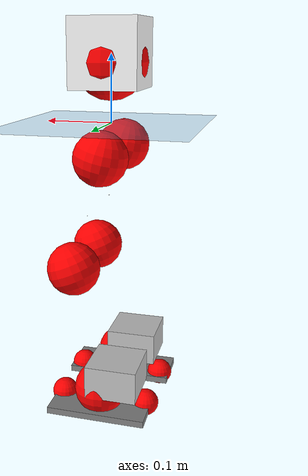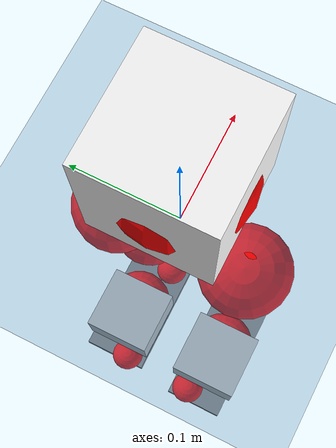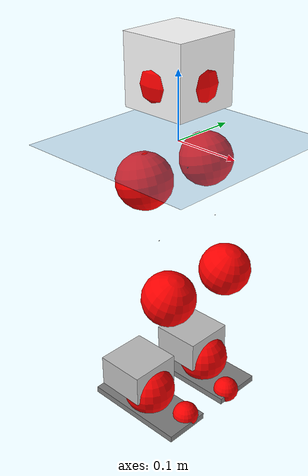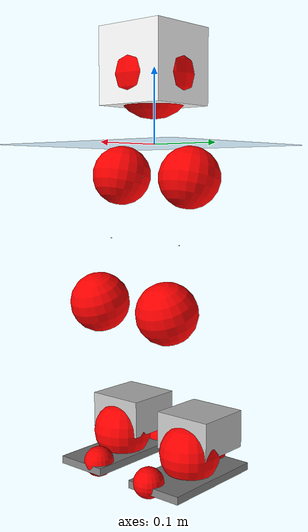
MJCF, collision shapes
<mujoco model="pi_12dof_release_v1">
  <compiler angle="radian" assetdir="assets" balanceinertia="true" inertiafromgeom="false"/>

  <option timestep="0.005" density="1.2" viscosity="2e-05"/>

  <size nkey="1"/>

  <visual>
    <quality shadowsize="8192"/>
    <map shadowclip="0.5"/>
  </visual>

  <default>
    <default class="/">
      <joint armature="0.01" damping="0.01" frictionloss="0.01"/>
      <geom contype="0" conaffinity="0" group="1" solref="-1000 -80"/>
      <site size="0.01 0.005 0.005" group="5"/>
      <general forcelimited="true" biastype="affine" gainprm="20" biasprm="0 -20 -0.5"/>
      <default class="foot">
        <geom size="0.0845 0.036 0.005" type="box" condim="6" group="4" priority="1" friction="0.9 0.2 0.2" solimp="0.015 1 0.005"/>
      </default>
      <default class="reward_collision_sphere">
        <geom group="5" rgba="1 0 0 1"/>
      </default>
    </default>
  </default>

  <asset>
    <texture type="skybox" colorspace="auto" name="//unnamed_texture_0" builtin="gradient" rgb1="0.95 0.95 0.95" rgb2="0.95 0.95 0.95" width="100" height="600"/>
    <texture type="2d" colorspace="auto" name="texplane" builtin="checker" rgb1="0.345 0.575 0.748" rgb2="0.345 0.575 0.748" markrgb="1 1 1" width="512" height="512"/>
    <material name="MatPlane" class="/" texture="texplane" texuniform="true" texrepeat="2 2" specular="0.9"/>
    <mesh name="baselink_1" class="/" file="baselink_1.STL"/>
    <mesh name="r_hip_pitch_link" class="/" file="r_hip_pitch_link.STL"/>
    <mesh name="r_hip_roll_link" class="/" file="r_hip_roll_link.STL"/>
    <mesh name="r_thigh_link" class="/" file="r_thigh_link.STL"/>
    <mesh name="r_calf_link" class="/" file="r_calf_link.STL"/>
    <mesh name="r_ankle_pitch_link" class="/" file="r_ankle_pitch_link.STL"/>
    <mesh name="r_ankle_roll_link" class="/" file="r_ankle_roll_link.STL"/>
    <mesh name="l_hip_pitch_link" class="/" file="l_hip_pitch_link.STL"/>
    <mesh name="l_hip_roll_link" class="/" file="l_hip_roll_link.STL"/>
    <mesh name="l_thigh_link" class="/" file="l_thigh_link.STL"/>
    <mesh name="l_calf_link" class="/" file="l_calf_link.STL"/>
    <mesh name="l_ankle_pitch_link" class="/" file="l_ankle_pitch_link.STL"/>
    <mesh name="l_ankle_roll_link" class="/" file="l_ankle_roll_link.STL"/>
  </asset>

  <worldbody>
    <geom name="floor" class="/" size="100 100 0.125" type="plane" group="0" material="MatPlane"/>
    <light name="toplight_shadow" class="/" pos="0 0 5" dir="0.0990148 0.0990148 -0.990148" type="directional" ambient="0.04 0.04 0.04" diffuse="0.55 0.55 0.55" specular="0.12 0.12 0.12"/>
    <light name="toplight_fill" class="/" pos="0 0 5" dir="0.0990148 0.0990148 -0.990148" type="directional" castshadow="false" ambient="0.04 0.04 0.04" diffuse="0.3 0.3 0.3" specular="0.08 0.08 0.08"/>
    <body name="trunk" pos="0.000700605 -0.000303193 8.29173e-05" quat="1 -0.000330331 0.000327281 1.46706e-05">
      <inertial pos="6.68182e-05 -0.00298608 0.0502869" quat="0.697382 0.012811 0.0075217 0.716545" mass="2.29968" diaginertia="0.00907987 0.00270499 0.0129681"/>
      <joint name="//unnamed_joint_0" type="free"/>
      <geom name="//unnamed_geom_1" class="/" type="mesh" density="0" rgba="1 1 1 1" mesh="baselink_1"/>
      <geom name="//unnamed_geom_2" class="/" size="0.0505499 0.0505499 0.0505499" pos="0 0 0.100732" type="box" rgba="1 1 1 1"/>
      <geom name="//unnamed_geom_3" class="reward_collision_sphere" size="0.0556049" pos="0 0 0.0881405"/>
      <site name="imu" class="/" pos="0.0134678 0.000477241 -0.0135043" size="0.01011"/>
      <camera name="track" class="/" pos="0 -1.575 0" quat="0.707107 0.707107 0 0" mode="trackcom"/>
      <camera name="ego_camera" class="/" pos="0.0739755 0 0.226647" quat="-0.5 -0.5 0.5 0.5"/>
      <body name="r_hip_pitch_link" pos="-0.0023515 -0.0205511 -0.0424551" quat="0.992186 -9.28393e-06 -0.124765 -4.39553e-06">
        <inertial pos="0.00115212 -0.0470669 -0.000372348" quat="-0.0187341 0.706266 -0.0277105 0.707156" mass="0.378331" diaginertia="9.90621e-05 2.78806e-05 0.00025518"/>
        <joint name="r_hip_pitch_joint" class="/" pos="0 0 0" axis="-0.000242015 -1 -0.00037972" stiffness="0.0111054" range="-1.76481 1.19829" armature="0.00873208" damping="0.013211" frictionloss="0.00974797"/>
        <geom name="//unnamed_geom_4" class="/" type="mesh" density="0" rgba="0.75294 0.75294 0.75294 1" mesh="r_hip_pitch_link"/>
        <geom name="//unnamed_geom_5" class="/" size="0.000505499 0.000505499 0.000505499" type="box" rgba="0.75294 0.75294 0.75294 1"/>
        <body name="r_hip_roll_link" pos="-0.00171771 -0.0417552 0.00215528" quat="0.999999 -0.000950603 -0.000807254 0.000674095">
          <inertial pos="-0.00253209 -0.000130869 -0.0759647" quat="0.714636 -0.0735704 -0.079344 0.691077" mass="0.391401" diaginertia="0.000313178 8.21455e-05 0.000407129"/>
          <joint name="r_hip_roll_joint" class="/" pos="0 0 0" axis="-0.99992 -0.00760397 -0.010076" range="-0.139386 0.502457" armature="0.00898964" damping="0" frictionloss="0.0114359"/>
          <geom name="//unnamed_geom_6" class="/" type="mesh" density="0" rgba="0.75294 0.75294 0.75294 1" mesh="r_hip_roll_link"/>
          <geom name="//unnamed_geom_7" class="/" size="0.000505499 0.000505499 0.000505499" type="box" rgba="0.75294 0.75294 0.75294 1"/>
          <geom name="//unnamed_geom_8" class="reward_collision_sphere" size="0.0404399"/>
          <body name="r_thigh_link" pos="0.00245185 0.00294419 -0.0880407" quat="1 0.000363814 1.14257e-06 8.47697e-05">
            <inertial pos="0.000769429 -0.00048256 -0.0611372" quat="0.736197 0.676764 -0.000611005 -0.00203876" mass="0.117984" diaginertia="0.000114131 2.88361e-05 0.000183474"/>
            <joint name="r_thigh_joint" class="/" pos="0 0 0" axis="0.00217645 -0.00431539 -0.999988" stiffness="0.00170754" range="-0.351698 0.620288" armature="0.0115869" damping="0" frictionloss="0.0107946"/>
            <geom name="//unnamed_geom_9" class="/" type="mesh" density="0" rgba="0.75294 0.75294 0.75294 1" mesh="r_thigh_link"/>
            <geom name="//unnamed_geom_10" class="/" size="0.000505499 0.000505499 0.000505499" type="box" rgba="0.75294 0.75294 0.75294 1"/>
            <body name="r_calf_link" pos="-0.00199135 -0.00226742 -0.088343" quat="0.947666 3.65561e-05 0.319263 -7.62733e-06">
              <inertial pos="-0.00268727 -0.00317327 -0.0902351" quat="0.999883 -0.0102753 0.0101486 0.00508695" mass="0.832613" diaginertia="0.00313295 0.0010812 0.00052722"/>
              <joint name="r_calf_joint" class="/" pos="0 0 0" axis="-0.00839712 -0.999939 -0.00713245" range="-1.65157 0.660733" armature="0.00943973" damping="0.0120527" frictionloss="0.00994604"/>
              <geom name="//unnamed_geom_11" class="/" type="mesh" density="0" rgba="0.75294 0.75294 0.75294 1" mesh="r_calf_link"/>
              <geom name="//unnamed_geom_12" class="/" size="0.000505499 0.000505499 0.000505499" type="box" rgba="0.75294 0.75294 0.75294 1"/>
              <geom name="//unnamed_geom_13" class="reward_collision_sphere" size="0.0404399"/>
              <body name="r_ankle_pitch_link" pos="0.00205551 -0.000484221 -0.178582" quat="0.98034 0.000368978 -0.197315 -4.51228e-05">
                <inertial pos="0.00751632 0.00336026 -0.0020408" quat="-0.0049533 0.709983 0.00255681 0.704196" mass="0.190407" diaginertia="0.000283252 6.57076e-05 0.000397108"/>
                <joint name="r_ankle_pitch_joint" class="/" pos="0 0 0" axis="0.0100489 -0.999948 0.00184084" range="-1.24208 0.546775" armature="0.0111474" damping="0" frictionloss="0.0104157"/>
                <geom name="//unnamed_geom_14" class="/" type="mesh" density="0" rgba="0.75294 0.75294 0.75294 1" mesh="r_ankle_pitch_link"/>
                <geom name="//unnamed_geom_15" class="/" size="0.0394289 0.0404399 0.0252749" type="box" rgba="0.75294 0.75294 0.75294 1"/>
                <body name="r_ankle_roll_link" pos="0.0729204 0.000797359 0.000779908" quat="1 -0.000794282 0.000396304 0.000131753">
                  <inertial pos="-0.0262567 0.000169192 -0.0183011" quat="0.567741 0.42482 0.438291 0.552358" mass="0.567046" diaginertia="0.00110078 0.000318821 0.000924613"/>
                  <joint name="r_ankle_roll_joint" class="/" pos="0 0 0" axis="-0.999954 0.00267821 -0.00916106" stiffness="0.0029523" range="-0.106428 0.163789" armature="0.0114431" damping="0.0129784" frictionloss="0.00977872"/>
                  <geom name="//unnamed_geom_16" class="/" type="mesh" density="0" rgba="0.75294 0.75294 0.75294 1" mesh="r_ankle_roll_link"/>
                  <geom name="//unnamed_geom_17" class="/" type="mesh" rgba="0.75294 0.75294 0.75294 1" mesh="r_ankle_roll_link"/>
                  <geom name="right_foot" class="foot" size="0.0839757 0.0365129 0.00509488" pos="-0.0503034 0 -0.0554026"/>
                  <geom name="//unnamed_geom_19" class="reward_collision_sphere" size="0.0404399" pos="-0.049317 0 -0.025183"/>
                  <geom name="//unnamed_geom_20" class="reward_collision_sphere" size="0.0202199" pos="0.0147951 0.01575 -0.050366"/>
                  <geom name="//unnamed_geom_21" class="reward_collision_sphere" size="0.0202199" pos="-0.118361 0.01575 -0.050366"/>
                  <site name="right_foot" class="foot" pos="-0.0503034 0 -0.0554026" size="0.01011"/>
                </body>
              </body>
            </body>
          </body>
        </body>
      </body>
      <body name="l_hip_pitch_link" pos="0.00217129 0.0161463 -0.04425" quat="0.992198 -3.51158e-05 -0.124674 -1.23597e-05">
        <inertial pos="0.00128301 0.0444782 -0.00279932" quat="-0.0352806 0.70844 0.0420095 0.703636" mass="0.416633" diaginertia="0.000127051 3.32687e-05 0.00032272"/>
        <joint name="l_hip_pitch_joint" class="/" pos="0 0 0" axis="-0.00207023 0.999996 0.00190734" range="-1.27147 1.75448" armature="0.0103126" damping="0.0212197" frictionloss="0.00894365"/>
        <geom name="//unnamed_geom_22" class="/" type="mesh" density="0" rgba="0.75294 0.75294 0.75294 1" mesh="l_hip_pitch_link"/>
        <geom name="//unnamed_geom_23" class="/" size="0.000505499 0.000505499 0.000505499" type="box" rgba="0.75294 0.75294 0.75294 1"/>
        <body name="l_hip_roll_link" pos="-0.00279035 0.0433578 0.00134621" quat="1 -4.9269e-05 7.0187e-05 -1.74094e-07">
          <inertial pos="-0.00416728 -2.21274e-05 -0.0791329" quat="0.698447 -0.0756013 -0.0771466 0.707464" mass="0.386282" diaginertia="0.0002925 8.3985e-05 0.000395686"/>
          <joint name="l_hip_roll_joint" class="/" pos="0 0 0" axis="-1 -0.00032092 6.37496e-05" range="-0.499483 0.137369" armature="0.0104704" damping="0.0189714" frictionloss="0.00921443"/>
          <geom name="//unnamed_geom_24" class="/" type="mesh" density="0" rgba="0.75294 0.75294 0.75294 1" mesh="l_hip_roll_link"/>
          <geom name="//unnamed_geom_25" class="/" size="0.000505499 0.000505499 0.000505499" type="box" rgba="0.75294 0.75294 0.75294 1"/>
          <geom name="//unnamed_geom_26" class="reward_collision_sphere" size="0.0404399"/>
          <body name="l_thigh_link" pos="-0.00148928 -8.54455e-06 -0.0879412" quat="1 -0.000134866 -1.01366e-05 -0.00010281">
            <inertial pos="0.00163188 0.00135681 -0.0599298" quat="0.679451 0.733666 0.00484968 0.00754965" mass="0.119447" diaginertia="0.000116339 3.04767e-05 0.000187619"/>
            <joint name="l_thigh_joint" class="/" pos="0 0 0" axis="-0.000156529 0.000200545 -1" range="-0.65311 0.256626" armature="0.0100749" damping="0.00888186" frictionloss="0.0103403"/>
            <geom name="//unnamed_geom_27" class="/" type="mesh" density="0" rgba="0.75294 0.75294 0.75294 1" mesh="l_thigh_link"/>
            <geom name="//unnamed_geom_28" class="/" size="0.000505499 0.000505499 0.000505499" type="box" rgba="0.75294 0.75294 0.75294 1"/>
            <body name="l_calf_link" pos="0.001396 -0.000784853 -0.0877265" quat="0.947788 -0.000325582 0.3189 -0.000304612">
              <inertial pos="-0.00153903 0.00353867 -0.0904242" quat="0.999882 0.0123203 -0.00372711 0.00843416" mass="0.844487" diaginertia="0.00318236 0.00103463 0.00053626"/>
              <joint name="l_calf_joint" class="/" pos="0 0 0" axis="0.00181584 0.999906 0.0135911" range="-0.650279 1.65643" armature="0.0102332" damping="0" frictionloss="0.0102483"/>
              <geom name="//unnamed_geom_29" class="/" type="mesh" density="0" rgba="0.75294 0.75294 0.75294 1" mesh="l_calf_link"/>
              <geom name="//unnamed_geom_30" class="/" size="0.000505499 0.000505499 0.000505499" type="box" rgba="0.75294 0.75294 0.75294 1"/>
              <geom name="//unnamed_geom_31" class="reward_collision_sphere" size="0.0404399"/>
              <body name="l_ankle_pitch_link" pos="0.00249756 0.00121111 -0.179526" quat="0.979981 -0.0002147 -0.199087 0.00129115">
                <inertial pos="0.00538374 0.000960029 -0.00105721" quat="-0.00299056 0.707691 0.00291011 0.706509" mass="0.17119" diaginertia="0.000270392 6.57257e-05 0.000373464"/>
                <joint name="l_ankle_pitch_joint" class="/" pos="0 0 0" axis="0.00212205 0.999998 0.000293021" range="-0.539095 1.25946" armature="0.00907636" damping="0.00679188" frictionloss="0.0104634"/>
                <geom name="//unnamed_geom_32" class="/" type="mesh" density="0" rgba="0.75294 0.75294 0.75294 1" mesh="l_ankle_pitch_link"/>
                <geom name="//unnamed_geom_33" class="/" size="0.0394289 0.0404399 0.0252749" type="box" rgba="0.75294 0.75294 0.75294 1"/>
                <body name="l_ankle_roll_link" pos="0.0739178 0.00267375 -0.00043516" quat="0.999999 -0.000628721 -0.000616687 0.000901567">
                  <inertial pos="-0.0214142 -0.00196051 -0.0189957" quat="0.55178 0.429241 0.444529 0.560076" mass="0.544464" diaginertia="0.00103271 0.000312643 0.000879427"/>
                  <joint name="l_ankle_roll_joint" class="/" pos="0 0 0" axis="-0.999999 0.000364509 0.00157528" range="-0.0969879 0.105515" armature="0.0116178" damping="0.0223754" frictionloss="0.010596"/>
                  <geom name="//unnamed_geom_34" class="/" type="mesh" density="0" rgba="0.75294 0.75294 0.75294 1" mesh="l_ankle_roll_link"/>
                  <geom name="//unnamed_geom_35" class="/" type="mesh" rgba="0.75294 0.75294 0.75294 1" mesh="l_ankle_roll_link"/>
                  <geom name="left_foot" class="foot" size="0.0762825 0.0405373 0.00508051" pos="-0.0503034 0 -0.0554026"/>
                  <geom name="//unnamed_geom_37" class="reward_collision_sphere" size="0.0404399" pos="-0.049317 0 -0.025183"/>
                  <geom name="//unnamed_geom_38" class="reward_collision_sphere" size="0.0202199" pos="0.0147951 -0.01575 -0.050366"/>
                  <geom name="//unnamed_geom_39" class="reward_collision_sphere" size="0.0202199" pos="-0.118361 -0.01575 -0.050366"/>
                  <site name="left_foot" class="foot" pos="-0.0503034 0 -0.0554026" size="0.01011"/>
                </body>
              </body>
            </body>
          </body>
        </body>
      </body>
    </body>
  </worldbody>

  <contact>
    <pair class="/" geom1="floor" geom2="right_foot" name="//unnamed_contact_1"/>
    <pair class="/" geom1="floor" geom2="left_foot" name="//unnamed_contact_0"/>
  </contact>

  <actuator>
    <general name="r_hip_pitch_joint" class="/" joint="r_hip_pitch_joint" forcerange="-23.4345 23.4345" gainprm="19.1946" biasprm="0 -19.1946 -0.501726"/>
    <general name="r_hip_roll_joint" class="/" joint="r_hip_roll_joint" forcerange="-21.0221 21.0221" gainprm="19.1946" biasprm="0 -19.1946 -0.501726"/>
    <general name="r_thigh_joint" class="/" joint="r_thigh_joint" forcerange="-21.0078 21.0078" gainprm="19.1946" biasprm="0 -19.1946 -0.501726"/>
    <general name="r_calf_joint" class="/" joint="r_calf_joint" forcerange="-23.3867 23.3867" gainprm="19.1946" biasprm="0 -19.1946 -0.501726"/>
    <general name="r_ankle_pitch_joint" class="/" joint="r_ankle_pitch_joint" forcerange="-20.4035 20.4035" gainprm="19.1946" biasprm="0 -19.1946 -0.501726"/>
    <general name="r_ankle_roll_joint" class="/" joint="r_ankle_roll_joint" forcerange="-21.8576 21.8576" gainprm="19.1946" biasprm="0 -19.1946 -0.501726"/>
    <general name="l_hip_pitch_joint" class="/" joint="l_hip_pitch_joint" forcerange="-19.1327 19.1327" gainprm="19.1946" biasprm="0 -19.1946 -0.501726"/>
    <general name="l_hip_roll_joint" class="/" joint="l_hip_roll_joint" forcerange="-19.182 19.182" gainprm="19.1946" biasprm="0 -19.1946 -0.501726"/>
    <general name="l_thigh_joint" class="/" joint="l_thigh_joint" forcerange="-21.2511 21.2511" gainprm="19.1946" biasprm="0 -19.1946 -0.501726"/>
    <general name="l_calf_joint" class="/" joint="l_calf_joint" forcerange="-21.6716 21.6716" gainprm="19.1946" biasprm="0 -19.1946 -0.501726"/>
    <general name="l_ankle_pitch_joint" class="/" joint="l_ankle_pitch_joint" forcerange="-23.166 23.166" gainprm="19.1946" biasprm="0 -19.1946 -0.501726"/>
    <general name="l_ankle_roll_joint" class="/" joint="l_ankle_roll_joint" forcerange="-22.0702 22.0702" gainprm="19.1946" biasprm="0 -19.1946 -0.501726"/>
  </actuator>

  <sensor>
    <gyro site="imu" name="imu_angular_velocity"/>
    <velocimeter site="imu" name="imu_linear_velocity"/>
    <framelinvel objtype="site" objname="left_foot" name="left_foot_global_linear_velocity"/>
    <framelinvel objtype="site" objname="right_foot" name="right_foot_global_linear_velocity"/>
  </sensor>

  <keyframe>
    <key name="home" qpos="0 0 0.291 1 0 0 0 0.4 0 0 -0.8 0.4 0 -0.4 0 0 0.8 -0.4 0"/>
  </keyframe>
</mujoco>
